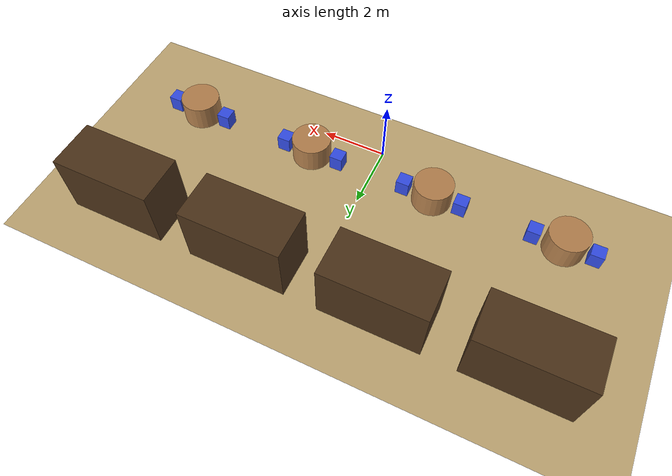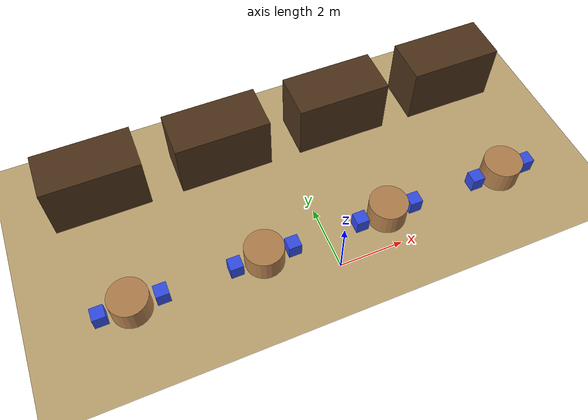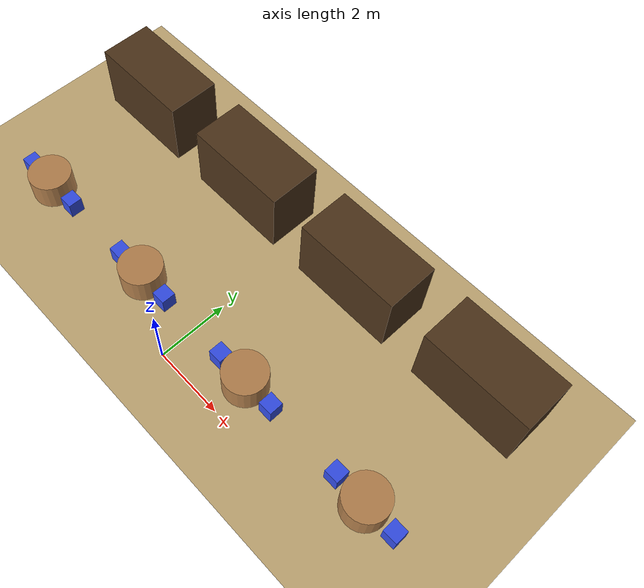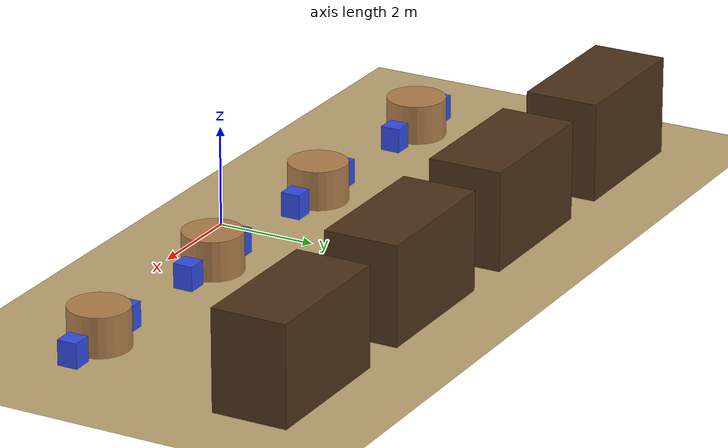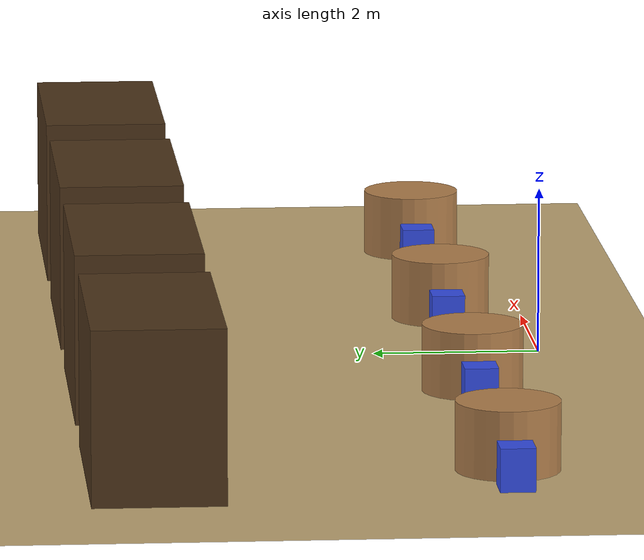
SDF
<sdf version="1.7">
 <world name="foodcourt">
  <plugin filename="gz-sim-physics-system" name="gz::sim::systems::Physics"/>
  <plugin filename="gz-sim-user-commands-system" name="gz::sim::systems::UserCommands"/>
  <plugin filename="gz-sim-scene-broadcaster-system" name="gz::sim::systems::SceneBroadcaster"/>
  <plugin filename="gz-sim-sensors-system" name="gz::sim::systems::Sensors">
   <render_engine>ogre2</render_engine>
  </plugin>
  <plugin filename="gz-sim-imu-system" name="gz::sim::systems::Imu"/>
  <physics type="ode">
   <real_time_update_rate>1000.0</real_time_update_rate>
   <max_step_size>0.001</max_step_size>
   <real_time_factor>1</real_time_factor>
   <ode>
    <solver>
     <type>quick</type>
     <iters>150</iters>
     <precon_iters>0</precon_iters>
     <sor>1.400000</sor>
     <use_dynamic_moi_rescaling>1</use_dynamic_moi_rescaling>
    </solver>
    <constraints>
     <cfm>0.00001</cfm>
     <erp>0.2</erp>
     <contact_max_correcting_vel>2000.000000</contact_max_correcting_vel>
     <contact_surface_layer>0.01000</contact_surface_layer>
    </constraints>
   </ode>
  </physics>
  <scene>
   <ambient>0.45 0.45 0.45 1</ambient>
   <background>0.95 0.95 0.95 1</background>
   <shadows>false</shadows>
  </scene>
  <light name="indoor_light" type="point">
   <pose>0 0 6 0 0 0</pose>
   <diffuse>0.8 0.76 0.7 1</diffuse>
   <specular>0 0 0 1</specular>
   <attenuation>
    <range>30</range>
    <constant>0.6</constant>
    <linear>0.03</linear>
    <quadratic>0.01</quadratic>
   </attenuation>
  </light>
  <model name="ground_plane">
   <static>true</static>
   <link name="link">
    <collision name="ground_collision">
     <geometry><plane><normal>0 0 1</normal><size>50 50</size></plane></geometry>
    </collision>
    <visual name="ground_visual">
     <geometry><plane><normal>0 0 1</normal><size>50 50</size></plane></geometry>
     <material>
      <ambient>0.75 0.65 0.45 1</ambient>
      <diffuse>0.75 0.65 0.45 1</diffuse>
      <specular>0 0 0 1</specular>
     </material>
    </visual>
   </link>
  </model>
  <model name="stall_1">
   <static>true</static>
   <pose>-6 5 1 0 0 0</pose>
   <link name="link">
    <collision name="col"><geometry><box><size>3 1.5 2</size></box></geometry></collision>
    <visual name="vis">
     <geometry><box><size>3 1.5 2</size></box></geometry>
     <material>
      <ambient>0.30 0.20 0.10 1</ambient>
      <diffuse>0.30 0.20 0.10 1</diffuse>
      <specular>0 0 0 1</specular>
     </material>
    </visual>
   </link>
  </model>
  <model name="stall_2">
   <static>true</static>
   <pose>-2 5 1 0 0 0</pose>
   <link name="link">
    <collision name="col"><geometry><box><size>3 1.5 2</size></box></geometry></collision>
    <visual name="vis">
     <geometry><box><size>3 1.5 2</size></box></geometry>
     <material>
      <ambient>0.30 0.20 0.10 1</ambient>
      <diffuse>0.30 0.20 0.10 1</diffuse>
      <specular>0 0 0 1</specular>
     </material>
    </visual>
   </link>
  </model>
  <model name="stall_3">
   <static>true</static>
   <pose>2 5 1 0 0 0</pose>
   <link name="link">
    <collision name="col"><geometry><box><size>3 1.5 2</size></box></geometry></collision>
    <visual name="vis">
     <geometry><box><size>3 1.5 2</size></box></geometry>
     <material>
      <ambient>0.30 0.20 0.10 1</ambient>
      <diffuse>0.30 0.20 0.10 1</diffuse>
      <specular>0 0 0 1</specular>
     </material>
    </visual>
   </link>
  </model>
  <model name="stall_4">
   <static>true</static>
   <pose>6 5 1 0 0 0</pose>
   <link name="link">
    <collision name="col"><geometry><box><size>3 1.5 2</size></box></geometry></collision>
    <visual name="vis">
     <geometry><box><size>3 1.5 2</size></box></geometry>
     <material>
      <ambient>0.30 0.20 0.10 1</ambient>
      <diffuse>0.30 0.20 0.10 1</diffuse>
      <specular>0 0 0 1</specular>
     </material>
    </visual>
   </link>
  </model>
  <model name="table_1">
   <static>true</static>
   <pose>-6 1 0.4 0 0 0</pose>
   <link name="link">
    <collision name="col">
     <geometry><cylinder><radius>0.6</radius><length>0.8</length></cylinder></geometry>
    </collision>
    <visual name="vis">
     <geometry><cylinder><radius>0.6</radius><length>0.8</length></cylinder></geometry>
     <material>
      <ambient>0.70 0.50 0.30 1</ambient>
      <diffuse>0.70 0.50 0.30 1</diffuse>
      <specular>0 0 0 1</specular>
     </material>
    </visual>
   </link>
  </model>
  <model name="table_2">
   <static>true</static>
   <pose>-2 1 0.4 0 0 0</pose>
   <link name="link">
    <collision name="col">
     <geometry><cylinder><radius>0.6</radius><length>0.8</length></cylinder></geometry>
    </collision>
    <visual name="vis">
     <geometry><cylinder><radius>0.6</radius><length>0.8</length></cylinder></geometry>
     <material>
      <ambient>0.70 0.50 0.30 1</ambient>
      <diffuse>0.70 0.50 0.30 1</diffuse>
      <specular>0 0 0 1</specular>
     </material>
    </visual>
   </link>
  </model>
  <model name="table_3">
   <static>true</static>
   <pose>2 1 0.4 0 0 0</pose>
   <link name="link">
    <collision name="col">
     <geometry><cylinder><radius>0.6</radius><length>0.8</length></cylinder></geometry>
    </collision>
    <visual name="vis">
     <geometry><cylinder><radius>0.6</radius><length>0.8</length></cylinder></geometry>
     <material>
      <ambient>0.70 0.50 0.30 1</ambient>
      <diffuse>0.70 0.50 0.30 1</diffuse>
      <specular>0 0 0 1</specular>
     </material>
    </visual>
   </link>
  </model>
  <model name="table_4">
   <static>true</static>
   <pose>6 1 0.4 0 0 0</pose>
   <link name="link">
    <collision name="col">
     <geometry><cylinder><radius>0.6</radius><length>0.8</length></cylinder></geometry>
    </collision>
    <visual name="vis">
     <geometry><cylinder><radius>0.6</radius><length>0.8</length></cylinder></geometry>
     <material>
      <ambient>0.70 0.50 0.30 1</ambient>
      <diffuse>0.70 0.50 0.30 1</diffuse>
      <specular>0 0 0 1</specular>
     </material>
    </visual>
   </link>
  </model>
  <model name="chair_11">
   <static>true</static>
   <pose>-6.9 1 0.25 0 0 0</pose>
   <link name="link">
    <collision name="col"><geometry><box><size>0.4 0.4 0.5</size></box></geometry></collision>
    <visual name="vis">
     <geometry><box><size>0.4 0.4 0.5</size></box></geometry>
     <material>
      <ambient>0.2 0.3 0.9 1</ambient>
      <diffuse>0.2 0.3 0.9 1</diffuse>
      <specular>0 0 0 1</specular>
     </material>
    </visual>
   </link>
  </model>
  <model name="chair_12">
   <static>true</static>
   <pose>-5.1 1 0.25 0 0 3.14159</pose>
   <link name="link">
    <collision name="col"><geometry><box><size>0.4 0.4 0.5</size></box></geometry></collision>
    <visual name="vis">
     <geometry><box><size>0.4 0.4 0.5</size></box></geometry>
     <material>
      <ambient>0.2 0.3 0.9 1</ambient>
      <diffuse>0.2 0.3 0.9 1</diffuse>
      <specular>0 0 0 1</specular>
     </material>
    </visual>
   </link>
  </model>
  <model name="chair_21">
   <static>true</static>
   <pose>-2.9 1 0.25 0 0 0</pose>
   <link name="link">
    <collision name="col"><geometry><box><size>0.4 0.4 0.5</size></box></geometry></collision>
    <visual name="vis">
     <geometry><box><size>0.4 0.4 0.5</size></box></geometry>
     <material>
      <ambient>0.2 0.3 0.9 1</ambient>
      <diffuse>0.2 0.3 0.9 1</diffuse>
      <specular>0 0 0 1</specular>
     </material>
    </visual>
   </link>
  </model>
  <model name="chair_22">
   <static>true</static>
   <pose>-1.1 1 0.25 0 0 3.14159</pose>
   <link name="link">
    <collision name="col"><geometry><box><size>0.4 0.4 0.5</size></box></geometry></collision>
    <visual name="vis">
     <geometry><box><size>0.4 0.4 0.5</size></box></geometry>
     <material>
      <ambient>0.2 0.3 0.9 1</ambient>
      <diffuse>0.2 0.3 0.9 1</diffuse>
      <specular>0 0 0 1</specular>
     </material>
    </visual>
   </link>
  </model>
  <model name="chair_31">
   <static>true</static>
   <pose>1.1 1 0.25 0 0 0</pose>
   <link name="link">
    <collision name="col"><geometry><box><size>0.4 0.4 0.5</size></box></geometry></collision>
    <visual name="vis">
     <geometry><box><size>0.4 0.4 0.5</size></box></geometry>
     <material>
      <ambient>0.2 0.3 0.9 1</ambient>
      <diffuse>0.2 0.3 0.9 1</diffuse>
      <specular>0 0 0 1</specular>
     </material>
    </visual>
   </link>
  </model>
  <model name="chair_32">
   <static>true</static>
   <pose>2.9 1 0.25 0 0 3.14159</pose>
   <link name="link">
    <collision name="col"><geometry><box><size>0.4 0.4 0.5</size></box></geometry></collision>
    <visual name="vis">
     <geometry><box><size>0.4 0.4 0.5</size></box></geometry>
     <material>
      <ambient>0.2 0.3 0.9 1</ambient>
      <diffuse>0.2 0.3 0.9 1</diffuse>
      <specular>0 0 0 1</specular>
     </material>
    </visual>
   </link>
  </model>
  <model name="chair_41">
   <static>true</static>
   <pose>5.1 1 0.25 0 0 0</pose>
   <link name="link">
    <collision name="col"><geometry><box><size>0.4 0.4 0.5</size></box></geometry></collision>
    <visual name="vis">
     <geometry><box><size>0.4 0.4 0.5</size></box></geometry>
     <material>
      <ambient>0.2 0.3 0.9 1</ambient>
      <diffuse>0.2 0.3 0.9 1</diffuse>
      <specular>0 0 0 1</specular>
     </material>
    </visual>
   </link>
  </model>
  <model name="chair_42">
   <static>true</static>
   <pose>6.9 1 0.25 0 0 3.14159</pose>
   <link name="link">
    <collision name="col"><geometry><box><size>0.4 0.4 0.5</size></box></geometry></collision>
    <visual name="vis">
     <geometry><box><size>0.4 0.4 0.5</size></box></geometry>
     <material>
      <ambient>0.2 0.3 0.9 1</ambient>
      <diffuse>0.2 0.3 0.9 1</diffuse>
      <specular>0 0 0 1</specular>
     </material>
    </visual>
   </link>
  </model>
 </world>
</sdf>
